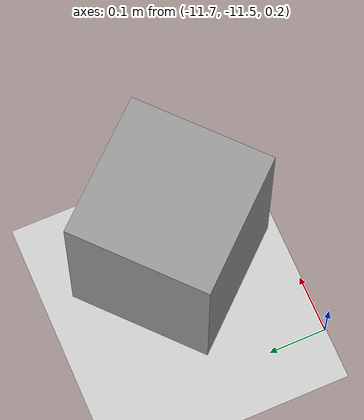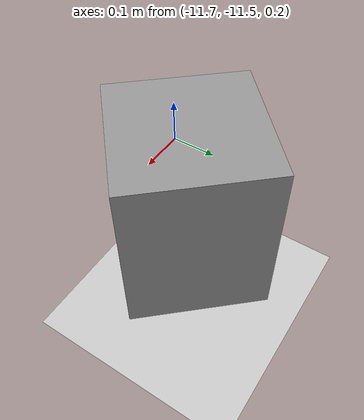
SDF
<sdf version="1.7">
 <world name="default">
  <light name="sun" type="directional">
   <pose>0 0 10 0 -0 0</pose>
   <diffuse>0.8 0.8 0.8 1</diffuse>
   <specular>0.2 0.2 0.2 1</specular>
   <attenuation>
    <range>1000</range>
    <constant>0.9</constant>
    <linear>0.01</linear>
    <quadratic>0.001</quadratic>
   </attenuation>
   <direction>-0.5 0.1 -0.9</direction>
   <spot><inner_angle>0</inner_angle><outer_angle>0</outer_angle><falloff>0</falloff></spot>
  </light>
  <model name="ground_plane">
   <static>1</static>
   <link name="link">
    <collision name="collision">
     <geometry><plane><normal>0 0 1</normal><size>100 100</size></plane></geometry>
     <surface>
      <contact><collide_bitmask>65535</collide_bitmask></contact>
      <friction><ode><mu>100</mu><mu2>50</mu2></ode></friction>
     </surface>
    </collision>
    <visual name="visual">
     <cast_shadows>0</cast_shadows>
     <geometry><plane><normal>0 0 1</normal><size>100 100</size></plane></geometry>
     <material>
      <script><uri>file://media/materials/scripts/gazebo.material</uri><name>Gazebo/Grey</name></script>
     </material>
    </visual>
   </link>
  </model>
  <gravity>0 0 -9.8</gravity>
  <magnetic_field>6e-06 2.3e-05 -4.2e-05</magnetic_field>
  <atmosphere type="adiabatic"/>
  <physics type="ode">
   <max_step_size>0.001</max_step_size>
   <real_time_factor>1</real_time_factor>
   <real_time_update_rate>1000</real_time_update_rate>
  </physics>
  <scene><ambient>0.4 0.4 0.4 1</ambient><background>0.7 0.7 0.7 1</background><shadows>1</shadows></scene>
  <spherical_coordinates>
   <surface_model>EARTH_WGS84</surface_model>
   <latitude_deg>0</latitude_deg>
   <longitude_deg>0</longitude_deg>
   <elevation>0</elevation>
   <heading_deg>0</heading_deg>
  </spherical_coordinates>
  <plugin name="random_landmark_pose" filename="libgazebo_ros_state_publisher.so">
   <ros>
    <republish>
     <topic>gazebo/set_model_state</topic>
     <msg_type>gazebo_msgs/ModelState</msg_type>
     <frequency>10</frequency>
    </republish>
   </ros>
  </plugin>
  <plugin name="random_number_generator" filename="libgazebo_ros_utils.so">
   <robot_namespace>/</robot_namespace>
   <set_random_number_seed>true</set_random_number_seed>
  </plugin>
  <model name="landmark_0">
   <pose>-11.391 -11.4113 0.16 0 0 0.735168</pose>
   <static>0</static>
   <link name="link">
    <gravity>0</gravity>
    <inertial>
     <mass>1</mass>
     <inertia>
      <ixx>0.0106667</ixx>
      <ixy>0</ixy>
      <ixz>0</ixz>
      <iyy>0.0106667</iyy>
      <iyz>0</iyz>
      <izz>0.0208333</izz>
     </inertia>
    </inertial>
    <collision name="collision">
     <geometry><box><size>0.25 0.25 0.32</size></box></geometry>
     <surface>
      <contact><collide_bitmask>65535</collide_bitmask></contact>
      <friction><ode><mu>100</mu><mu2>50</mu2></ode></friction>
     </surface>
    </collision>
    <visual name="visual">
     <geometry><box><size>0.25 0.25 0.32</size></box></geometry>
     <material>
      <script><uri>file://media/materials/scripts/gazebo.material</uri><name>Gazebo/Grey</name></script>
     </material>
     <meta><layer>0</layer></meta>
    </visual>
    <pose name="front_aruco">0 0.126 0.16 0 0 0</pose>
    <visual name="front_face_marker_0">
     <geometry><box><size>0.15 0.15 0.001</size></box></geometry>
     <material>
      <script>
       <uri>file:///usr/share/gazebo-11/media/materials/scripts/gazebo.material</uri>
       <name>Gazebo/DebugWhite</name>
      </script>
      <ambient>1 1 1 1</ambient>
      <diffuse>1 1 1 1</diffuse>
      <specular>0.1 0.1 0.1 1</specular>
      <emissive>0 0 0 1</emissive>
     </material>
    </visual>
    <pose name="back_aruco">0 -0.126 0.16 0 3.14159 0</pose>
    <visual name="back_face_marker_1">
     <geometry><box><size>0.15 0.15 0.001</size></box></geometry>
     <material>
      <shader type="vertex"><normal_map>__default__</normal_map></shader>
      <ambient>1 1 1 1</ambient>
      <diffuse>1 1 1 1</diffuse>
      <specular>0.1 0.1 0.1 1</specular>
      <emissive>0 0 0 1</emissive>
     </material>
    </visual>
    <pose name="left_aruco">-0.126 0 0.16 0 1.5708 0</pose>
    <visual name="left_face_marker_2">
     <geometry><box><size>0.15 0.15 0.001</size></box></geometry>
     <material>
      <shader type="vertex"><normal_map>__default__</normal_map></shader>
      <ambient>1 1 1 1</ambient>
      <diffuse>1 1 1 1</diffuse>
      <specular>0.1 0.1 0.1 1</specular>
      <emissive>0 0 0 1</emissive>
     </material>
    </visual>
    <pose name="right_aruco">0.126 0 0.16 0 -1.5708 0</pose>
    <visual name="right_face_marker_3">
     <geometry><box><size>0.15 0.15 0.001</size></box></geometry>
     <material>
      <shader type="vertex"><normal_map>__default__</normal_map></shader>
      <ambient>1 1 1 1</ambient>
      <diffuse>1 1 1 1</diffuse>
      <specular>0.1 0.1 0.1 1</specular>
      <emissive>0 0 0 1</emissive>
     </material>
    </visual>
    <pose name="top_aruco">0 0 0.321 1.5708 0 0</pose>
    <visual name="top_face_marker_4">
     <geometry><box><size>0.15 0.15 0.001</size></box></geometry>
     <material>
      <shader type="vertex"><normal_map>__default__</normal_map></shader>
      <ambient>1 1 1 1</ambient>
      <diffuse>1 1 1 1</diffuse>
      <specular>0.1 0.1 0.1 1</specular>
      <emissive>0 0 0 1</emissive>
     </material>
    </visual>
    <pose name="bottom_aruco">0 0 -0.001 -1.5708 0 0</pose>
    <visual name="bottom_face_marker_5">
     <geometry><box><size>0.15 0.15 0.001</size></box></geometry>
     <material>
      <shader type="vertex"><normal_map>__default__</normal_map></shader>
      <ambient>1 1 1 1</ambient>
      <diffuse>1 1 1 1</diffuse>
      <specular>0.1 0.1 0.1 1</specular>
      <emissive>0 0 0 1</emissive>
     </material>
    </visual>
   </link>
  </model>
 </world>
</sdf>
